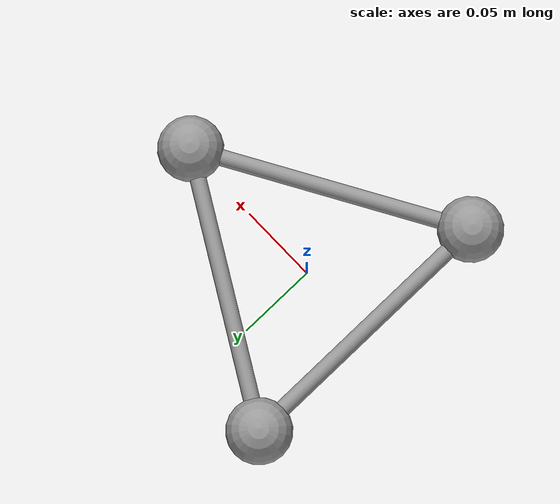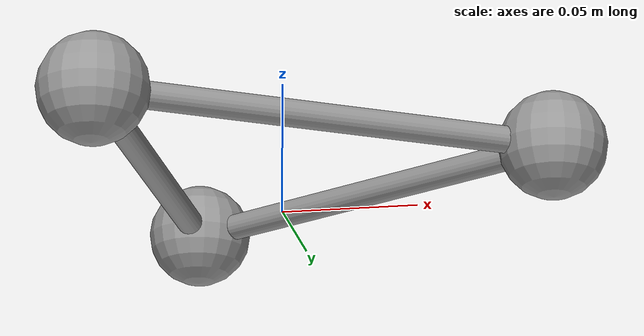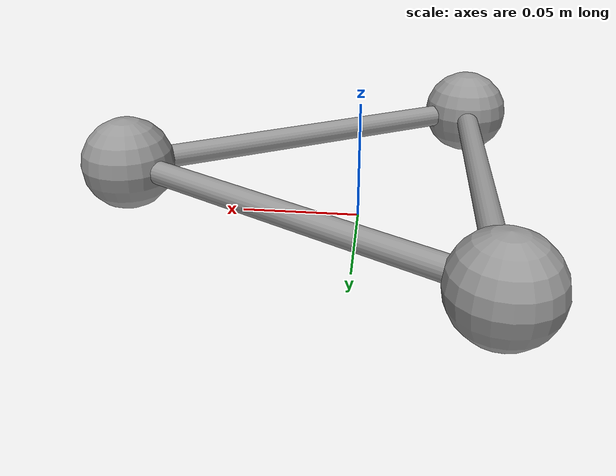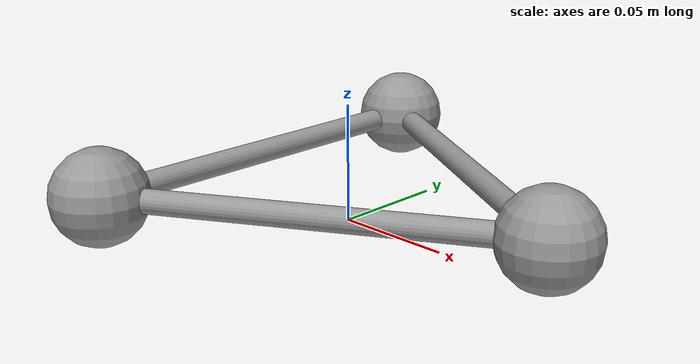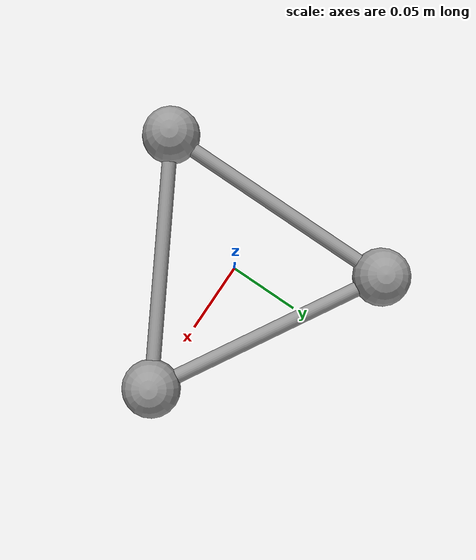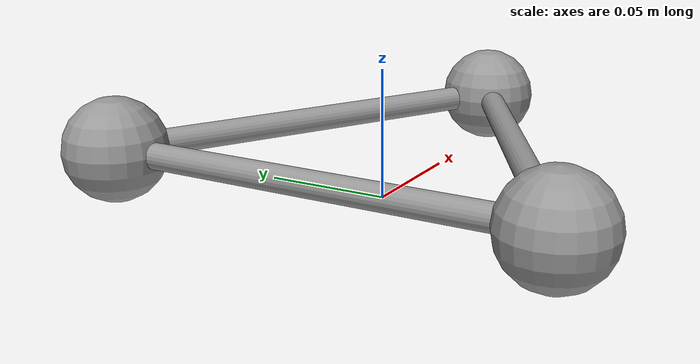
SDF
<?xml version="1.0" ?>

<sdf version="1.5">
  <model name="triball">
    <link name="link">
      <pose>0 0 0.02  0 0 0</pose>
      <inertial>
        <pose>0.0 0.0 0  0 0 0</pose>
        <mass>0.060318578948924034</mass>
        <inertia>
          <ixx>0.000311243867376448</ixx>
          <iyy>0.000311243867376448</iyy>
          <izz>0.0006128367621210681</izz>
          <ixy>0.0</ixy>
          <ixz>0.0</ixz>
          <iyz>0.0</iyz>
        </inertia>
      </inertial>
      <sensor name="imu" type="imu">
        <always_on>true</always_on>
      </sensor>

      <collision name="collision_a">
        <pose>0.09999999999999999 0 0  0 0 0</pose>
        <geometry>
          <sphere>
            <radius>0.02</radius>
          </sphere>
        </geometry>
        <surface>
          <friction>
            <ode>
              <mu>0.9</mu>
              <mu2>0.9</mu2>
              <fdir1>1 0 0</fdir1>
            </ode>
          </friction>
        </surface>
      </collision>
      <visual name="visual_a">
        <pose>0.09999999999999999 0 0  0 0 0</pose>
        <geometry>
          <sphere>
            <radius>0.02</radius>
          </sphere>
        </geometry>
        <material>
          <script>
            <uri>file://media/materials/scripts/gazebo.material</uri>
            <name>Gazebo/Grey</name>
          </script>
        </material>
      </visual>

      <collision name="collision_a_to_b">
        <pose>0.024999999999999998 0.04330127018922193 0.0  -1.5707962969925737 -1.0471975511965974 1.047197525387029</pose>
        <geometry>
          <cylinder>
            <radius>0.005</radius>
            <length>0.17320508075688773</length>
          </cylinder>
        </geometry>
        <surface>
          <friction>
            <ode>
              <mu>0.9</mu>
              <mu2>0.9</mu2>
            </ode>
          </friction>
        </surface>
      </collision>
      <visual name="visual_a_to_b">
        <pose>0.024999999999999998 0.04330127018922193 0.0  -1.5707962969925737 -1.0471975511965974 1.047197525387029</pose>
        <geometry>
          <cylinder>
            <radius>0.005</radius>
            <length>0.17320508075688773</length>
          </cylinder>
        </geometry>
        <material>
          <script>
            <uri>file://media/materials/scripts/gazebo.material</uri>
            <name>Gazebo/Grey</name>
          </script>
        </material>
      </visual>

      <collision name="collision_a_to_c">
        <pose>0.024999999999999998 -0.04330127018922193 0.0  1.5707962969925737 -1.0471975511965974 -1.047197525387029</pose>
        <geometry>
          <cylinder>
            <radius>0.005</radius>
            <length>0.17320508075688773</length>
          </cylinder>
        </geometry>
        <surface>
          <friction>
            <ode>
              <mu>0.9</mu>
              <mu2>0.9</mu2>
            </ode>
          </friction>
        </surface>
      </collision>
      <visual name="visual_a_to_c">
        <pose>0.024999999999999998 -0.04330127018922193 0.0  1.5707962969925737 -1.0471975511965974 -1.047197525387029</pose>
        <geometry>
          <cylinder>
            <radius>0.005</radius>
            <length>0.17320508075688773</length>
          </cylinder>
        </geometry>
        <material>
          <script>
            <uri>file://media/materials/scripts/gazebo.material</uri>
            <name>Gazebo/Grey</name>
          </script>
        </material>
      </visual>

      <collision name="collision_b">
        <pose>-0.049999999999999996 0.08660254037844387 0  0 0 0</pose>
        <geometry>
          <sphere>
            <radius>0.02</radius>
          </sphere>
        </geometry>
        <surface>
          <friction>
            <ode>
              <mu>0.9</mu>
              <mu2>0.9</mu2>
              <fdir1>1 0 0</fdir1>
            </ode>
          </friction>
        </surface>
      </collision>
      <visual name="visual_b">
        <pose>-0.049999999999999996 0.08660254037844387 0  0 0 0</pose>
        <geometry>
          <sphere>
            <radius>0.02</radius>
          </sphere>
        </geometry>
        <material>
          <script>
            <uri>file://media/materials/scripts/gazebo.material</uri>
            <name>Gazebo/Grey</name>
          </script>
        </material>
      </visual>

      <collision name="collision_b_to_c">
        <pose>-0.049999999999999996 0.0 0.0  1.5707963267948963 -0.0 0.0</pose>
        <geometry>
          <cylinder>
            <radius>0.005</radius>
            <length>0.17320508075688773</length>
          </cylinder>
        </geometry>
        <surface>
          <friction>
            <ode>
              <mu>0.9</mu>
              <mu2>0.9</mu2>
            </ode>
          </friction>
        </surface>
      </collision>
      <visual name="visual_b_to_c">
        <pose>-0.049999999999999996 0.0 0.0  1.5707963267948963 -0.0 0.0</pose>
        <geometry>
          <cylinder>
            <radius>0.005</radius>
            <length>0.17320508075688773</length>
          </cylinder>
        </geometry>
        <material>
          <script>
            <uri>file://media/materials/scripts/gazebo.material</uri>
            <name>Gazebo/Grey</name>
          </script>
        </material>
      </visual>

      <collision name="collision_c">
        <pose>-0.049999999999999996 -0.08660254037844387 0  0 0 0</pose>
        <geometry>
          <sphere>
            <radius>0.02</radius>
          </sphere>
        </geometry>
        <surface>
          <friction>
            <ode>
              <mu>0.9</mu>
              <mu2>0.9</mu2>
              <fdir1>1 0 0</fdir1>
            </ode>
          </friction>
        </surface>
      </collision>
      <visual name="visual_c">
        <pose>-0.049999999999999996 -0.08660254037844387 0  0 0 0</pose>
        <geometry>
          <sphere>
            <radius>0.02</radius>
          </sphere>
        </geometry>
        <material>
          <script>
            <uri>file://media/materials/scripts/gazebo.material</uri>
            <name>Gazebo/Grey</name>
          </script>
        </material>
      </visual>

    </link>
  </model>
</sdf>
